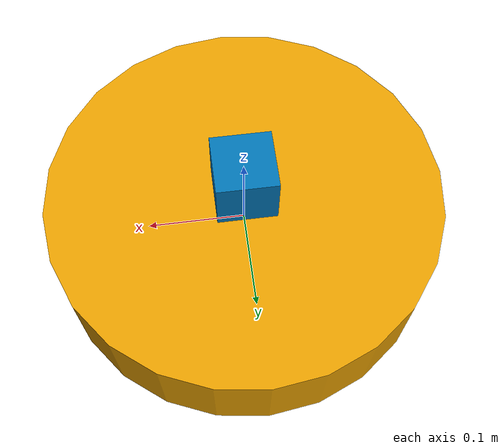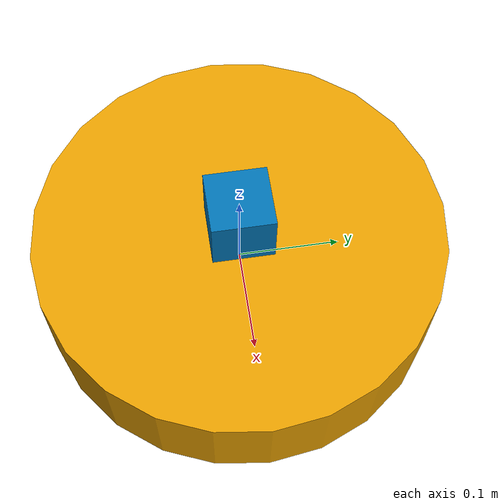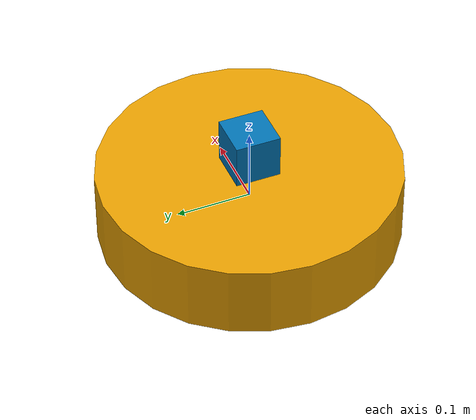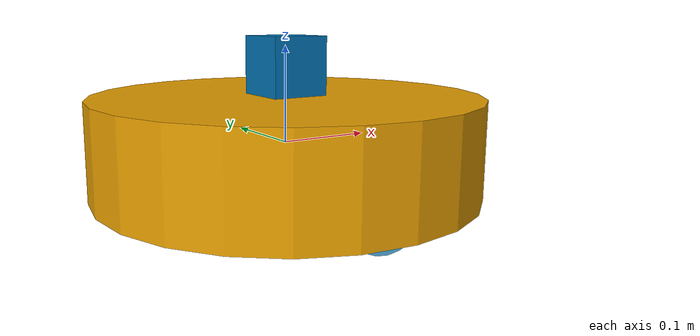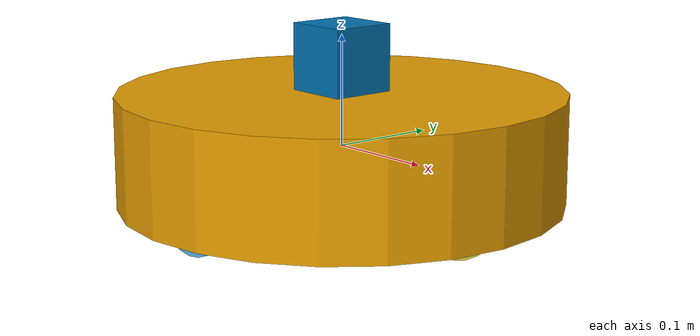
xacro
<?xml version="1.0"?>

<robot name="roomba_test" xmlns:xacro="http://ros.org/wiki/xacro">
	<link name="base_link">
		<visual>
			<geometry>
				<cylinder length="0.1" radius="0.2"/>
			</geometry>
		</visual>
		<collision>
			<geometry>
				<cylinder length="0.1" radius="0.2"/>
			</geometry>
		</collision>
		<inertial>
			<mass value="30"/>
			<inertia ixx="0.02" ixy="0.0" ixz="0.0" iyy="0.02" iyz="0.0" izz="0.02"/>
			<origin xyz="0.05 0.0 0.0"/>
		</inertial>
	</link>

	<joint name="right_wheel_joint" type="continuous">
		<parent link="base_link"/>
		<child link="right_wheel_link"/>
		<origin xyz = "0.0 -0.15 -0.02"/>
		<axis xyz="0 1 0"/>
		<limit effort="0.1" velocity="100.0"/>
	</joint>
	<link name="right_wheel_link">
		<visual>
			<geometry>
				<cylinder length="0.03" radius="0.05"/>
			</geometry>
			<origin rpy = "1.57075 0.0 0.0"/>
		</visual>
		<collision>
			<geometry>
				<cylinder length="0.03" radius="0.05"/>
			</geometry>
			<origin rpy = "1.57075 0.0 0.0"/>
			<surface>
				<friction>
					<ode>
						<mu>100</mu>
						<mu2>100</mu2>
						<slip1>10000.0</slip1>
						<slip2>10000.0</slip2>
					</ode>
				</friction>
			</surface>
		</collision>
		<inertial>
			<mass value="0.01"/>
			<inertia ixx="0.01" ixy="0.0" ixz="0.0" iyy="0.01" iyz="0.0" izz="0.01"/>
		</inertial>
	</link>

	<joint name="left_wheel_joint" type="continuous">
		<parent link="base_link"/>
		<child link="left_wheel_link"/>
		<origin xyz = "0.0 0.15 -0.02"/>
		<axis xyz="0 1 0"/>
		<limit effort="0.1" velocity="100.0"/>
	</joint>
	<link name="left_wheel_link">
		<visual>
			<geometry>
				<cylinder length="0.03" radius="0.05"/>
			</geometry>
			<origin rpy = "1.57075 0.0 0.0"/>
		</visual>
		<collision>
			<geometry>
				<cylinder length="0.03" radius="0.05"/>
			</geometry>
			<origin rpy = "1.57075 0.0 0.0"/>
			<surface>
				<friction>
					<ode>
						<mu>100</mu>
						<mu2>100</mu2>
						<slip1>10000.0</slip1>
						<slip2>10000.0</slip2>
					</ode>
				</friction>
			</surface>
		</collision>
		<inertial>
			<mass value="0.01"/>
			<inertia ixx="0.01" ixy="0.0" ixz="0.0" iyy="0.01" iyz="0.0" izz="0.01"/>
		</inertial>
	</link>

	<joint name="caster_joint" type="fixed">
		<parent link="base_link"/>
		<child link="caster_link"/>
		<origin xyz = "0.15 0.0 -0.04"/>
		<axis xyz="1 1 1"/>
	</joint>
	<link name="caster_link">
		<visual>
			<geometry>
				<sphere radius="0.03"/>
			</geometry>
			<origin rpy = "3.141592 0.0 0.0"/>
		</visual>
		<collision>
			<geometry>
				<sphere radius="0.03"/>
			</geometry>
			<origin rpy = "3.141592 0.0 0.0"/>
		</collision>
		<inertial>
			<mass value="0.01"/>
			<inertia ixx="0.01" ixy="0.0" ixz="0.0" iyy="0.01" iyz="0.0" izz="0.01"/>
		</inertial>
	</link>

	<joint name="urg_joint" type="fixed">
		<parent link="base_link"/>
		<child link="urg_link"/>
		<origin xyz = "0.0 0.0 0.05"/>
	</joint>
	<link name="urg_link">
		<visual>
			<geometry>
				<box size="0.06 0.06 0.06"/>
			</geometry>
			<origin xyz = "0.0 0.0 0.03"/>
		</visual>
		<collision>
			<geometry>
				<box size="0.06 0.06 0.06"/>
			</geometry>
			<origin xyz = "0.0 0.0 0.03"/>
		</collision>
		<inertial>
			<mass value="0.1"/>
			<inertia ixx="0.1" ixy="0.0" ixz="0.0" iyy="0.1" iyz="0.0" izz="1.0"/>
		</inertial>
	</link>

	<joint name="urg_laser_joint" type="fixed">
		<parent link="urg_link"/>
		<child link="urg_laser_link"/>
		<origin xyz = "0.0 0.0 0.03"/>
	</joint>
	<link name="urg_laser_link"/>

	<gazebo reference="right_wheel_link">
		<mu1>1000000.8</mu1>
		<mu2>1000000.8</mu2>
	</gazebo>
	<gazebo reference="left_wheel_link">
		<mu1>1000000.8</mu1>
		<mu2>1000000.8</mu2>
	</gazebo>
	<gazebo reference="caster_link">
		<mu1>0.0</mu1>
		<mu2>0.0</mu2>
	</gazebo>

	<gazebo reference="urg_laser_link">
		<sensor type="ray" name="urg_laser_sensor">
			<visualize>True</visualize>
			<update_rate>10</update_rate>
			<ray>
				<scan>
					<horizontal>
						<samples>1080</samples>
						<min_angle>-2.35619</min_angle>
						<max_angle>2.35619</max_angle>
					</horizontal>
				</scan>
				<range>
					<min>0.10</min>
					<max>30.0</max>
					<resolution>0.01</resolution>
				</range>
				<noise>
					<type>gaussian</type>
					<mean>0.0</mean>
					<stddev>0.01</stddev>
				</noise>
			</ray>
			<plugin name="gazebo_ros_urg_controller" filename="libgazebo_ros_laser.so">
				<alwaysOn>true</alwaysOn>
				<updateRate>10</updateRate>
				<topicName>roomba_test/laser/scan</topicName>
				<frameName>urg_laser_link</frameName>
			</plugin>
		</sensor>
	</gazebo>

	<gazebo>
		<plugin name="ros_controller" filename="libgazebo_ros_control.so">
			<robotNamespace>roomba_test</robotNamespace>
		</plugin>
	</gazebo>

	<transmission name="trans1">
		<type>transmission_interface/SimpleTransmission</type>
		<joint name="right_wheel_joint">
			<hardwareInterface>VelocityJointInterface</hardwareInterface>
		</joint>
		<actuator name="motor_right">
			<hardwareInterface>VelocityJointInterface</hardwareInterface>
			<mechanicalReduction>1</mechanicalReduction>
		</actuator>
	</transmission>
	<transmission name="trans2">
		<type>transmission_interface/SimpleTransmission</type>
		<joint name="left_wheel_joint">
			<hardwareInterface>VelocityJointInterface</hardwareInterface>
		</joint>
		<actuator name="motor_left">
			<hardwareInterface>VelocityJointInterface</hardwareInterface>
			<mechanicalReduction>1</mechanicalReduction>
		</actuator>
	</transmission>
</robot>
